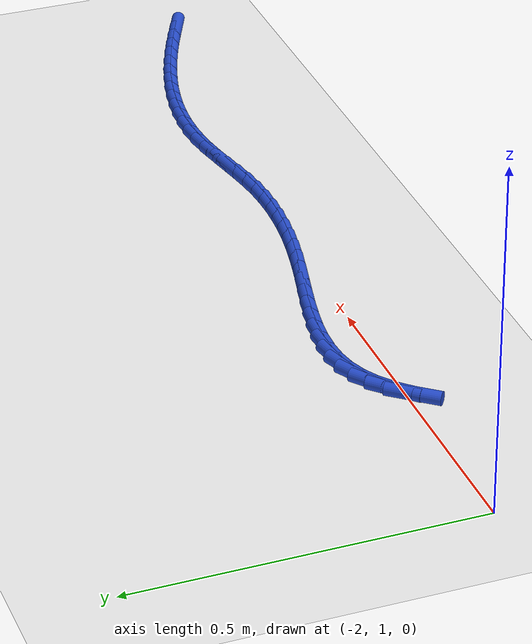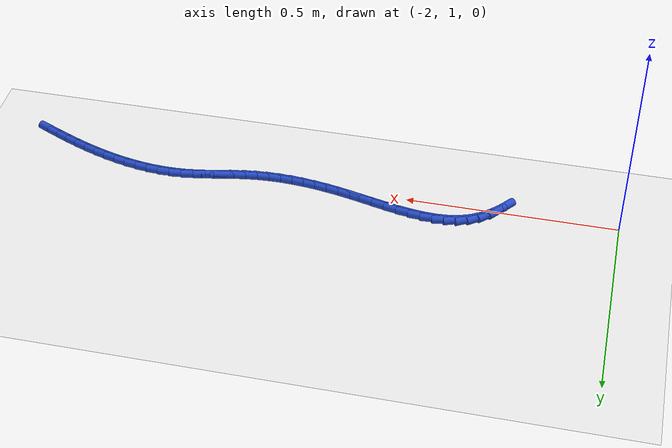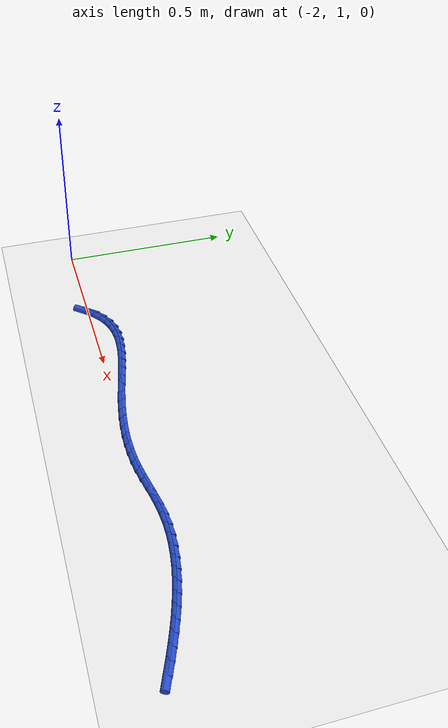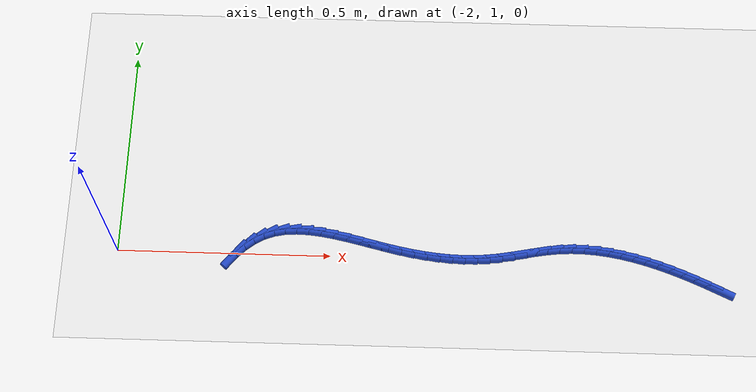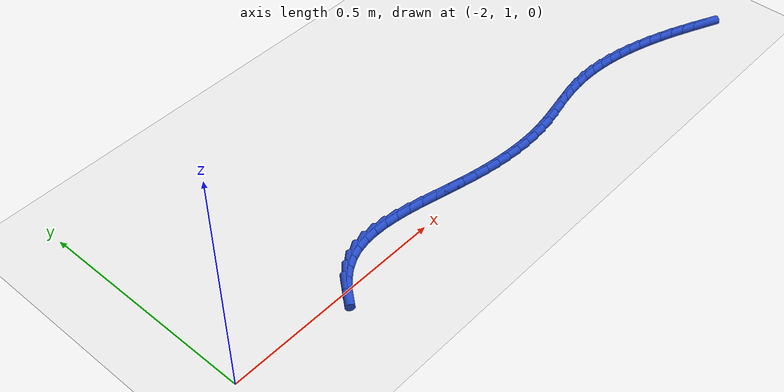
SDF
<sdf version="1.6">
 <world name="default">
  <model name="ground_plane">
   <static>1</static>
   <link name="link">
    <collision name="collision">
     <geometry><plane><normal>0 0 1</normal><size>100 100</size></plane></geometry>
     <surface><friction><ode><mu>100</mu><mu2>50</mu2></ode></friction></surface>
    </collision>
    <visual name="visual">
     <cast_shadows>0</cast_shadows>
     <geometry><plane><normal>0 0 1</normal><size>100 100</size></plane></geometry>
     <material>
      <script><uri>file://media/materials/scripts/gazebo.material</uri><name>Gazebo/WhiteGlow</name></script>
     </material>
    </visual>
   </link>
  </model>
  <model name="line">
   <link name="link_40">
    <pose>-0.5952420461567419 0.9396391392941753 0.01 0 1.57 -0.4307602638622326</pose>
    <collision name="collision">
     <geometry><cylinder><radius>0.01</radius><length>0.08</length></cylinder></geometry>
    </collision>
    <visual name="visual">
     <material>
      <script><name>Gazebo/Blue</name><uri>file://media/materials/scripts/gazebo.material</uri></script>
     </material>
     <geometry><cylinder><radius>0.01</radius><length>0.08</length></cylinder></geometry>
    </visual>
   </link>
   <link name="link_41">
    <pose>-0.6228325444586533 0.9523181187452506 0.01 0 1.57 -0.412189025677803</pose>
    <collision name="collision">
     <geometry><cylinder><radius>0.01</radius><length>0.08</length></cylinder></geometry>
    </collision>
    <visual name="visual">
     <material>
      <script><name>Gazebo/Blue</name><uri>file://media/materials/scripts/gazebo.material</uri></script>
     </material>
     <geometry><cylinder><radius>0.01</radius><length>0.08</length></cylinder></geometry>
    </visual>
   </link>
   <link name="link_42">
    <pose>-0.6506089074274387 0.9644629509516289 0.01 0 1.57 -0.39006887813816987</pose>
    <collision name="collision">
     <geometry><cylinder><radius>0.01</radius><length>0.08</length></cylinder></geometry>
    </collision>
    <visual name="visual">
     <material>
      <script><name>Gazebo/Blue</name><uri>file://media/materials/scripts/gazebo.material</uri></script>
     </material>
     <geometry><cylinder><radius>0.01</radius><length>0.08</length></cylinder></geometry>
    </visual>
   </link>
   <link name="link_43">
    <pose>-0.6785565650113139 0.9759532232716974 0.01 0 1.57 -0.3642544920603681</pose>
    <collision name="collision">
     <geometry><cylinder><radius>0.01</radius><length>0.08</length></cylinder></geometry>
    </collision>
    <visual name="visual">
     <material>
      <script><name>Gazebo/Blue</name><uri>file://media/materials/scripts/gazebo.material</uri></script>
     </material>
     <geometry><cylinder><radius>0.01</radius><length>0.08</length></cylinder></geometry>
    </visual>
   </link>
   <link name="link_44">
    <pose>-0.7066609471584948 0.9866685230638432 0.01 0 1.57 -0.33457994045460715</pose>
    <collision name="collision">
     <geometry><cylinder><radius>0.01</radius><length>0.08</length></cylinder></geometry>
    </collision>
    <visual name="visual">
     <material>
      <script><name>Gazebo/Blue</name><uri>file://media/materials/scripts/gazebo.material</uri></script>
     </material>
     <geometry><cylinder><radius>0.01</radius><length>0.08</length></cylinder></geometry>
    </visual>
   </link>
   <link name="link_45">
    <pose>-0.7349074838171972 0.9964884376864537 0.01 0 1.57 -0.30086735414312865</pose>
    <collision name="collision">
     <geometry><cylinder><radius>0.01</radius><length>0.08</length></cylinder></geometry>
    </collision>
    <visual name="visual">
     <material>
      <script><name>Gazebo/Blue</name><uri>file://media/materials/scripts/gazebo.material</uri></script>
     </material>
     <geometry><cylinder><radius>0.01</radius><length>0.08</length></cylinder></geometry>
    </visual>
   </link>
   <link name="link_46">
    <pose>-0.7632816049356363 1.0052925544979157 0.01 0 1.57 -0.2629388572317301</pose>
    <collision name="collision">
     <geometry><cylinder><radius>0.01</radius><length>0.08</length></cylinder></geometry>
    </collision>
    <visual name="visual">
     <material>
      <script><name>Gazebo/Blue</name><uri>file://media/materials/scripts/gazebo.material</uri></script>
     </material>
     <geometry><cylinder><radius>0.01</radius><length>0.08</length></cylinder></geometry>
    </visual>
   </link>
   <link name="link_47">
    <pose>-0.7917687404620288 1.0129604608566165 0.01 0 1.57 -0.22063267449083634</pose>
    <collision name="collision">
     <geometry><cylinder><radius>0.01</radius><length>0.08</length></cylinder></geometry>
    </collision>
    <visual name="visual">
     <material>
      <script><name>Gazebo/Blue</name><uri>file://media/materials/scripts/gazebo.material</uri></script>
     </material>
     <geometry><cylinder><radius>0.01</radius><length>0.08</length></cylinder></geometry>
    </visual>
   </link>
   <link name="link_48">
    <pose>-0.8203543203445897 1.019371744120943 0.01 0 1.57 -0.17382410248840413</pose>
    <collision name="collision">
     <geometry><cylinder><radius>0.01</radius><length>0.08</length></cylinder></geometry>
    </collision>
    <visual name="visual">
     <material>
      <script><name>Gazebo/Blue</name><uri>file://media/materials/scripts/gazebo.material</uri></script>
     </material>
     <geometry><cylinder><radius>0.01</radius><length>0.08</length></cylinder></geometry>
    </visual>
   </link>
   <link name="link_49">
    <pose>-0.8490237745315345 1.0244059916492823 0.01 0 1.57 -0.12245150060278656</pose>
    <collision name="collision">
     <geometry><cylinder><radius>0.01</radius><length>0.08</length></cylinder></geometry>
    </collision>
    <visual name="visual">
     <material>
      <script><name>Gazebo/Blue</name><uri>file://media/materials/scripts/gazebo.material</uri></script>
     </material>
     <geometry><cylinder><radius>0.01</radius><length>0.08</length></cylinder></geometry>
    </visual>
   </link>
   <link name="link_50">
    <pose>-0.8777625329710799 1.0279427908000218 0.01 0 1.57 -0.06654644822876513</pose>
    <collision name="collision">
     <geometry><cylinder><radius>0.01</radius><length>0.08</length></cylinder></geometry>
    </collision>
    <visual name="visual">
     <material>
      <script><name>Gazebo/Blue</name><uri>file://media/materials/scripts/gazebo.material</uri></script>
     </material>
     <geometry><cylinder><radius>0.01</radius><length>0.08</length></cylinder></geometry>
    </visual>
   </link>
   <link name="link_51">
    <pose>-0.9065560256114404 1.0298617289315486 0.01 0 1.57 -0.0062656675080587166</pose>
    <collision name="collision">
     <geometry><cylinder><radius>0.01</radius><length>0.08</length></cylinder></geometry>
    </collision>
    <visual name="visual">
     <material>
      <script><name>Gazebo/Blue</name><uri>file://media/materials/scripts/gazebo.material</uri></script>
     </material>
     <geometry><cylinder><radius>0.01</radius><length>0.08</length></cylinder></geometry>
    </visual>
   </link>
   <link name="link_52">
    <pose>-0.9353896824008328 1.0300423934022493 0.01 0 1.57 0.058079630058301544</pose>
    <collision name="collision">
     <geometry><cylinder><radius>0.01</radius><length>0.08</length></cylinder></geometry>
    </collision>
    <visual name="visual">
     <material>
      <script><name>Gazebo/Blue</name><uri>file://media/materials/scripts/gazebo.material</uri></script>
     </material>
     <geometry><cylinder><radius>0.01</radius><length>0.08</length></cylinder></geometry>
    </visual>
   </link>
   <link name="link_53">
    <pose>-0.964248933287472 1.0283643715705115 0.01 0 1.57 0.12253561640505588</pose>
    <collision name="collision">
     <geometry><cylinder><radius>0.01</radius><length>0.08</length></cylinder></geometry>
    </collision>
    <visual name="visual">
     <material>
      <script><name>Gazebo/Blue</name><uri>file://media/materials/scripts/gazebo.material</uri></script>
     </material>
     <geometry><cylinder><radius>0.01</radius><length>0.08</length></cylinder></geometry>
    </visual>
   </link>
   <link name="link_54">
    <pose>-0.9931190645048581 1.0248089394972961 0.01 0 1.57 0.1687357305586583</pose>
    <collision name="collision">
     <geometry><cylinder><radius>0.01</radius><length>0.08</length></cylinder></geometry>
    </collision>
    <visual name="visual">
     <material>
      <script><name>Gazebo/Blue</name><uri>file://media/materials/scripts/gazebo.material</uri></script>
     </material>
     <geometry><cylinder><radius>0.01</radius><length>0.08</length></cylinder></geometry>
    </visual>
   </link>
   <link name="link_55">
    <pose>-1.0219846073684027 1.0198915331607437 0.01 0 1.57 0.19139211059573905</pose>
    <collision name="collision">
     <geometry><cylinder><radius>0.01</radius><length>0.08</length></cylinder></geometry>
    </collision>
    <visual name="visual">
     <material>
      <script><name>Gazebo/Blue</name><uri>file://media/materials/scripts/gazebo.material</uri></script>
     </material>
     <geometry><cylinder><radius>0.01</radius><length>0.08</length></cylinder></geometry>
    </visual>
   </link>
   <link name="link_56">
    <pose>-1.0508298461791241 1.014302369339393 0.01 0 1.57 0.19100467956801448</pose>
    <collision name="collision">
     <geometry><cylinder><radius>0.01</radius><length>0.08</length></cylinder></geometry>
    </collision>
    <visual name="visual">
     <material>
      <script><name>Gazebo/Blue</name><uri>file://media/materials/scripts/gazebo.material</uri></script>
     </material>
     <geometry><cylinder><radius>0.01</radius><length>0.08</length></cylinder></geometry>
    </visual>
   </link>
   <link name="link_57">
    <pose>-1.0796390650969527 1.008731764642111 0.01 0 1.57 0.16747604173135128</pose>
    <collision name="collision">
     <geometry><cylinder><radius>0.01</radius><length>0.08</length></cylinder></geometry>
    </collision>
    <visual name="visual">
     <material>
      <script><name>Gazebo/Blue</name><uri>file://media/materials/scripts/gazebo.material</uri></script>
     </material>
     <geometry><cylinder><radius>0.01</radius><length>0.08</length></cylinder></geometry>
    </visual>
   </link>
   <link name="link_58">
    <pose>-1.1083965482818192 1.0038700356777632 0.01 0 1.57 0.12100863812179356</pose>
    <collision name="collision">
     <geometry><cylinder><radius>0.01</radius><length>0.08</length></cylinder></geometry>
    </collision>
    <visual name="visual">
     <material>
      <script><name>Gazebo/Blue</name><uri>file://media/materials/scripts/gazebo.material</uri></script>
     </material>
     <geometry><cylinder><radius>0.01</radius><length>0.08</length></cylinder></geometry>
    </visual>
   </link>
   <link name="link_59">
    <pose>-1.1370893118881078 1.0003809162843078 0.01 0 1.57 0.0652808433842499</pose>
    <collision name="collision">
     <geometry><cylinder><radius>0.01</radius><length>0.08</length></cylinder></geometry>
    </collision>
    <visual name="visual">
     <material>
      <script><name>Gazebo/Blue</name><uri>file://media/materials/scripts/gazebo.material</uri></script>
     </material>
     <geometry><cylinder><radius>0.01</radius><length>0.08</length></cylinder></geometry>
    </visual>
   </link>
   <link name="link_60">
    <pose>-1.1657476111992182 0.9985074162167823 0.01 0 1.57 0.012231027606359678</pose>
    <collision name="collision">
     <geometry><cylinder><radius>0.01</radius><length>0.08</length></cylinder></geometry>
    </collision>
    <visual name="visual">
     <material>
      <script><name>Gazebo/Blue</name><uri>file://media/materials/scripts/gazebo.material</uri></script>
     </material>
     <geometry><cylinder><radius>0.01</radius><length>0.08</length></cylinder></geometry>
    </visual>
   </link>
   <link name="link_61">
    <pose>-1.1944362371626414 0.9981565073420344 0.01 0 1.57 -0.03713033663335703</pose>
    <collision name="collision">
     <geometry><cylinder><radius>0.01</radius><length>0.08</length></cylinder></geometry>
    </collision>
    <visual name="visual">
     <material>
      <script><name>Gazebo/Blue</name><uri>file://media/materials/scripts/gazebo.material</uri></script>
     </material>
     <geometry><cylinder><radius>0.01</radius><length>0.08</length></cylinder></geometry>
    </visual>
   </link>
   <link name="link_62">
    <pose>-1.223220944417014 0.9992257846480789 0.01 0 1.57 -0.08227820049955427</pose>
    <collision name="collision">
     <geometry><cylinder><radius>0.01</radius><length>0.08</length></cylinder></geometry>
    </collision>
    <visual name="visual">
     <material>
      <script><name>Gazebo/Blue</name><uri>file://media/materials/scripts/gazebo.material</uri></script>
     </material>
     <geometry><cylinder><radius>0.01</radius><length>0.08</length></cylinder></geometry>
    </visual>
   </link>
   <link name="link_63">
    <pose>-1.2521674876009719 1.0016128431229303 0.01 0 1.57 -0.12285852551211134</pose>
    <collision name="collision">
     <geometry><cylinder><radius>0.01</radius><length>0.08</length></cylinder></geometry>
    </collision>
    <visual name="visual">
     <material>
      <script><name>Gazebo/Blue</name><uri>file://media/materials/scripts/gazebo.material</uri></script>
     </material>
     <geometry><cylinder><radius>0.01</radius><length>0.08</length></cylinder></geometry>
    </visual>
   </link>
   <link name="link_64">
    <pose>-1.2813416213531508 1.0052152777546026 0.01 0 1.57 -0.15867541784099093</pose>
    <collision name="collision">
     <geometry><cylinder><radius>0.01</radius><length>0.08</length></cylinder></geometry>
    </collision>
    <visual name="visual">
     <material>
      <script><name>Gazebo/Blue</name><uri>file://media/materials/scripts/gazebo.material</uri></script>
     </material>
     <geometry><cylinder><radius>0.01</radius><length>0.08</length></cylinder></geometry>
    </visual>
   </link>
   <link name="link_65">
    <pose>-1.310809100312188 1.0099306835311106 0.01 0 1.57 -0.1896679077770963</pose>
    <collision name="collision">
     <geometry><cylinder><radius>0.01</radius><length>0.08</length></cylinder></geometry>
    </collision>
    <visual name="visual">
     <material>
      <script><name>Gazebo/Blue</name><uri>file://media/materials/scripts/gazebo.material</uri></script>
     </material>
     <geometry><cylinder><radius>0.01</radius><length>0.08</length></cylinder></geometry>
    </visual>
   </link>
   <link name="link_66">
    <pose>-1.3406356791167195 1.0156566554404687 0.01 0 1.57 -0.21584274983676272</pose>
    <collision name="collision">
     <geometry><cylinder><radius>0.01</radius><length>0.08</length></cylinder></geometry>
    </collision>
    <visual name="visual">
     <material>
      <script><name>Gazebo/Blue</name><uri>file://media/materials/scripts/gazebo.material</uri></script>
     </material>
     <geometry><cylinder><radius>0.01</radius><length>0.08</length></cylinder></geometry>
    </visual>
   </link>
   <link name="link_67">
    <pose>-1.3708860448236102 1.0222892996389903 0.01 0 1.57 -0.2339169108895091</pose>
    <collision name="collision">
     <geometry><cylinder><radius>0.01</radius><length>0.08</length></cylinder></geometry>
    </collision>
    <visual name="visual">
     <material>
      <script><name>Gazebo/Blue</name><uri>file://media/materials/scripts/gazebo.material</uri></script>
     </material>
     <geometry><cylinder><radius>0.01</radius><length>0.08</length></cylinder></geometry>
    </visual>
   </link>
   <link name="link_68">
    <pose>-1.4015288820358027 1.0295908388647284 0.01 0 1.57 -0.2384395150574937</pose>
    <collision name="collision">
     <geometry><cylinder><radius>0.01</radius><length>0.08</length></cylinder></geometry>
    </collision>
    <visual name="visual">
     <material>
      <script><name>Gazebo/Blue</name><uri>file://media/materials/scripts/gazebo.material</uri></script>
     </material>
     <geometry><cylinder><radius>0.01</radius><length>0.08</length></cylinder></geometry>
    </visual>
   </link>
   <link name="link_69">
    <pose>-1.4323620393331582 1.0370852507922248 0.01 0 1.57 -0.22920633937969095</pose>
    <collision name="collision">
     <geometry><cylinder><radius>0.01</radius><length>0.08</length></cylinder></geometry>
    </collision>
    <visual name="visual">
     <material>
      <script><name>Gazebo/Blue</name><uri>file://media/materials/scripts/gazebo.material</uri></script>
     </material>
     <geometry><cylinder><radius>0.01</radius><length>0.08</length></cylinder></geometry>
    </visual>
   </link>
   <link name="link_70">
    <pose>-1.46316575419938 1.0442719529555609 0.01 0 1.57 -0.20579958243474825</pose>
    <collision name="collision">
     <geometry><cylinder><radius>0.01</radius><length>0.08</length></cylinder></geometry>
    </collision>
    <visual name="visual">
     <material>
      <script><name>Gazebo/Blue</name><uri>file://media/materials/scripts/gazebo.material</uri></script>
     </material>
     <geometry><cylinder><radius>0.01</radius><length>0.08</length></cylinder></geometry>
    </visual>
   </link>
   <link name="link_71">
    <pose>-1.4937202641181708 1.050650362888817 0.01 0 1.57 -0.16693585075877002</pose>
    <collision name="collision">
     <geometry><cylinder><radius>0.01</radius><length>0.08</length></cylinder></geometry>
    </collision>
    <visual name="visual">
     <material>
      <script><name>Gazebo/Blue</name><uri>file://media/materials/scripts/gazebo.material</uri></script>
     </material>
     <geometry><cylinder><radius>0.01</radius><length>0.08</length></cylinder></geometry>
    </visual>
   </link>
   <link name="link_72">
    <pose>-1.5238058065732336 1.0557198981260738 0.01 0 1.57 -0.11044772445995889</pose>
    <collision name="collision">
     <geometry><cylinder><radius>0.01</radius><length>0.08</length></cylinder></geometry>
    </collision>
    <visual name="visual">
     <material>
      <script><name>Gazebo/Blue</name><uri>file://media/materials/scripts/gazebo.material</uri></script>
     </material>
     <geometry><cylinder><radius>0.01</radius><length>0.08</length></cylinder></geometry>
    </visual>
   </link>
   <link name="link_73">
    <pose>-1.5532026190482722 1.0589799762014127 0.01 0 1.57 -0.033335995237484345</pose>
    <collision name="collision">
     <geometry><cylinder><radius>0.01</radius><length>0.08</length></cylinder></geometry>
    </collision>
    <visual name="visual">
     <material>
      <script><name>Gazebo/Blue</name><uri>file://media/materials/scripts/gazebo.material</uri></script>
     </material>
     <geometry><cylinder><radius>0.01</radius><length>0.08</length></cylinder></geometry>
    </visual>
   </link>
   <link name="link_74">
    <pose>-1.5816909390269895 1.0599300146489143 0.01 0 1.57 0.06789908923546957</pose>
    <collision name="collision">
     <geometry><cylinder><radius>0.01</radius><length>0.08</length></cylinder></geometry>
    </collision>
    <visual name="visual">
     <material>
      <script><name>Gazebo/Blue</name><uri>file://media/materials/scripts/gazebo.material</uri></script>
     </material>
     <geometry><cylinder><radius>0.01</radius><length>0.08</length></cylinder></geometry>
    </visual>
   </link>
   <link name="link_75">
    <pose>-1.6090510039930874 1.0580694310026588 0.01 0 1.57 0.19626338467415097</pose>
    <collision name="collision">
     <geometry><cylinder><radius>0.01</radius><length>0.08</length></cylinder></geometry>
    </collision>
    <visual name="visual">
     <material>
      <script><name>Gazebo/Blue</name><uri>file://media/materials/scripts/gazebo.material</uri></script>
     </material>
     <geometry><cylinder><radius>0.01</radius><length>0.08</length></cylinder></geometry>
    </visual>
   </link>
   <link name="link_76">
    <pose>-1.6350630514302709 1.0528976427967283 0.01 0 1.57 0.35186030206197283</pose>
    <collision name="collision">
     <geometry><cylinder><radius>0.01</radius><length>0.08</length></cylinder></geometry>
    </collision>
    <visual name="visual">
     <material>
      <script><name>Gazebo/Blue</name><uri>file://media/materials/scripts/gazebo.material</uri></script>
     </material>
     <geometry><cylinder><radius>0.01</radius><length>0.08</length></cylinder></geometry>
    </visual>
   </link>
   <link name="link_77">
    <pose>-1.6595100067884025 1.0439222338277183 0.01 0 1.57 0.5155294787562434</pose>
    <collision name="collision">
     <geometry><cylinder><radius>0.01</radius><length>0.08</length></cylinder></geometry>
    </collision>
    <visual name="visual">
     <material>
      <script><name>Gazebo/Blue</name><uri>file://media/materials/scripts/gazebo.material</uri></script>
     </material>
     <geometry><cylinder><radius>0.01</radius><length>0.08</length></cylinder></geometry>
    </visual>
   </link>
   <link name="link_78">
    <pose>-1.6822937090558427 1.0310120570130874 0.01 0 1.57 0.6611022891584132</pose>
    <collision name="collision">
     <geometry><cylinder><radius>0.01</radius><length>0.08</length></cylinder></geometry>
    </collision>
    <visual name="visual">
     <material>
      <script><name>Gazebo/Blue</name><uri>file://media/materials/scripts/gazebo.material</uri></script>
     </material>
     <geometry><cylinder><radius>0.01</radius><length>0.08</length></cylinder></geometry>
    </visual>
   </link>
   <link name="link_79">
    <pose>-1.7034793713670227 1.0145323093777077 0.01 0 1.57 0.784975527634689</pose>
    <collision name="collision">
     <geometry><cylinder><radius>0.01</radius><length>0.08</length></cylinder></geometry>
    </collision>
    <visual name="visual">
     <material>
      <script><name>Gazebo/Blue</name><uri>file://media/materials/scripts/gazebo.material</uri></script>
     </material>
     <geometry><cylinder><radius>0.01</radius><length>0.08</length></cylinder></geometry>
    </visual>
   </link>
   <link name="link_80">
    <pose>-1.7231440691528581 0.9948842265798696 0.01 0 1.57 0.8882521210774781</pose>
    <collision name="collision">
     <geometry><cylinder><radius>0.01</radius><length>0.08</length></cylinder></geometry>
    </collision>
    <visual name="visual">
     <material>
      <script><name>Gazebo/Blue</name><uri>file://media/materials/scripts/gazebo.material</uri></script>
     </material>
     <geometry><cylinder><radius>0.01</radius><length>0.08</length></cylinder></geometry>
    </visual>
   </link>
  </model>
 </world>
</sdf>
